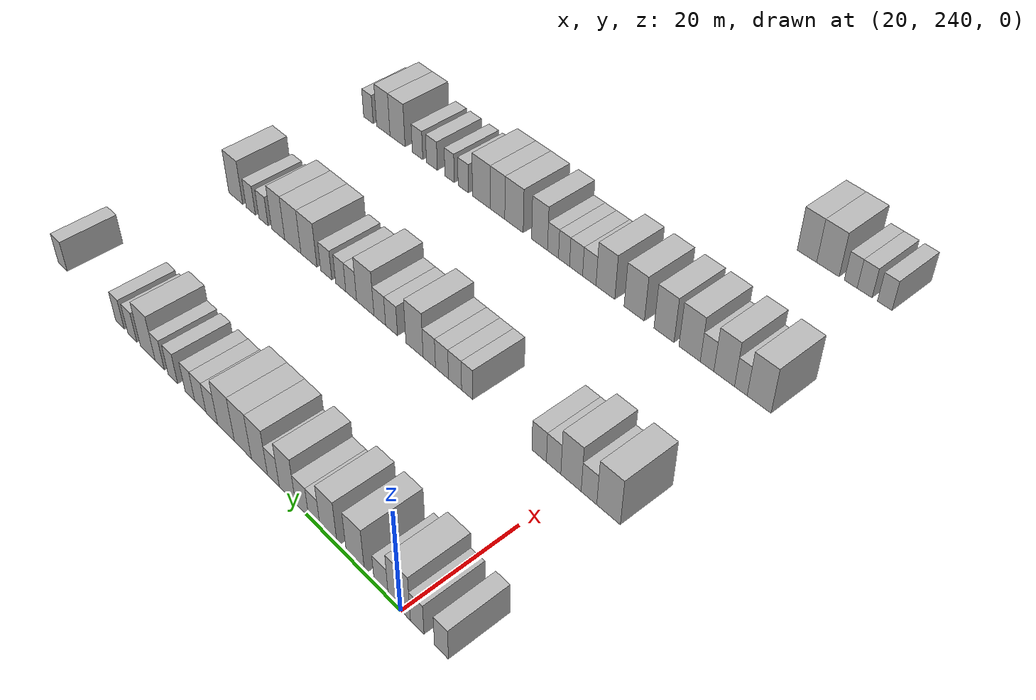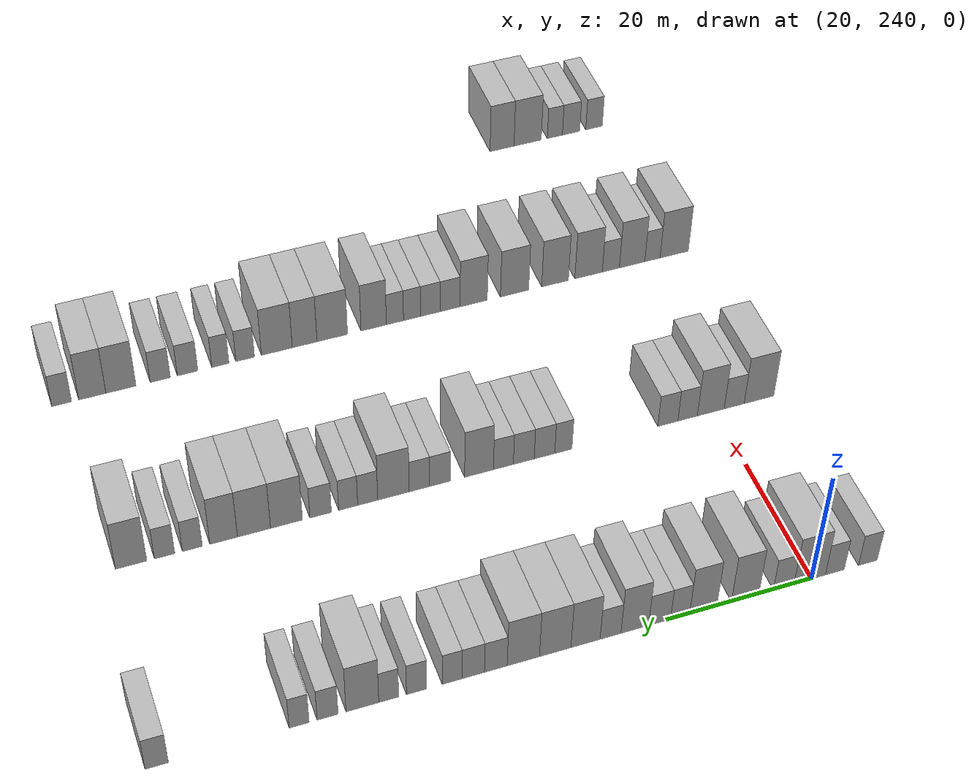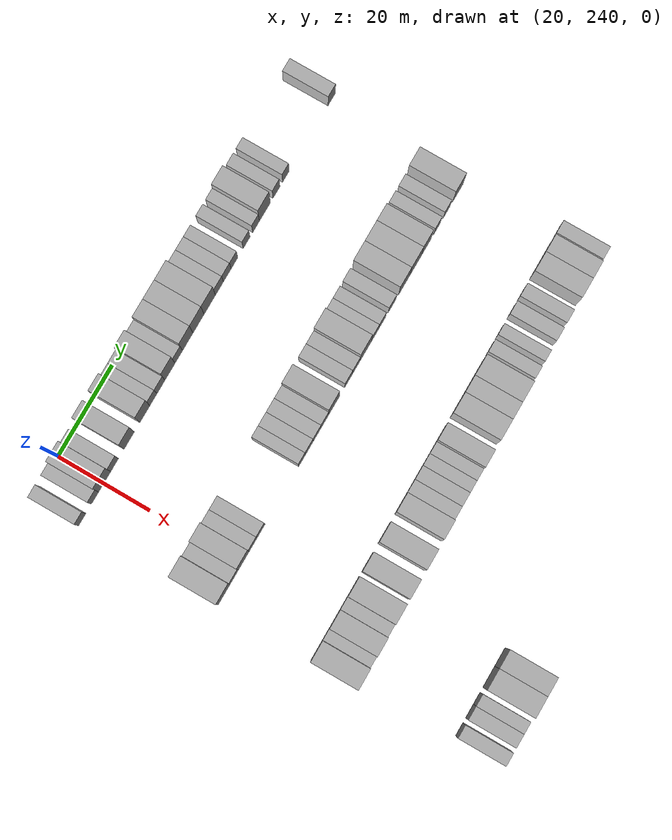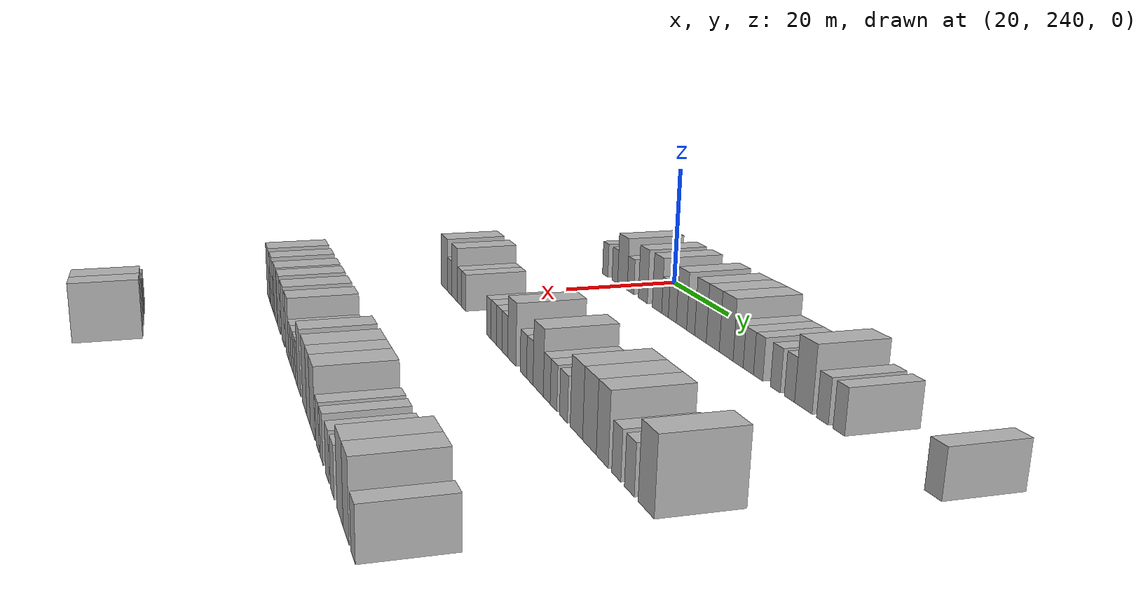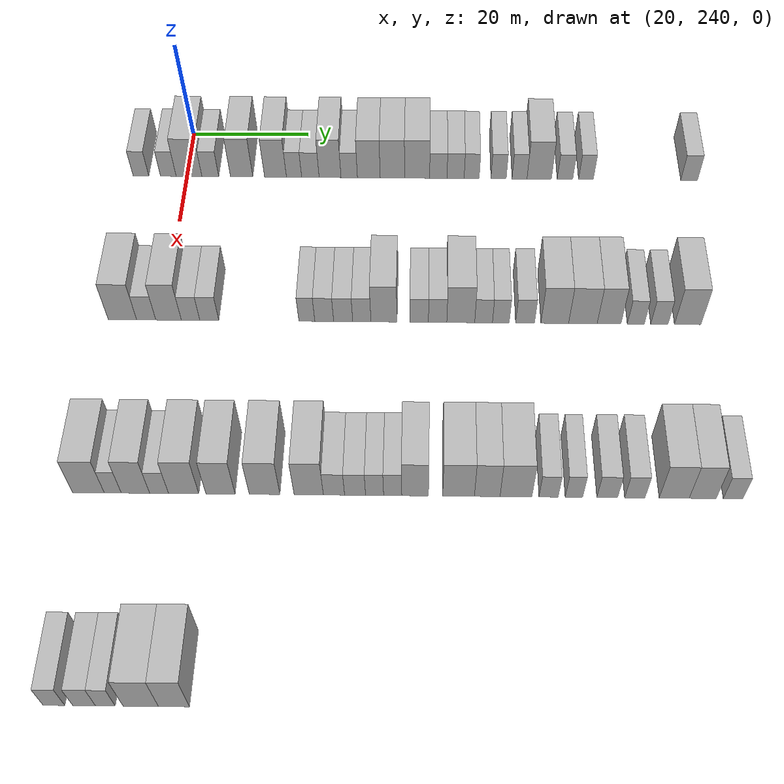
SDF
<sdf version="1.6">
 <world name="default">
  <model name="building_166">
   <static>1</static>
   <pose>25.0000 232.1615 0 0.000000 0.000000 0.000000</pose>
   <link name="link">
    <pose>0 0 3.00 0 0 0</pose>
    <collision name="collision"><geometry><box><size>10.0000 2.6607 6.0000</size></box></geometry></collision>
    <visual name="visual">
     <cast_shadows>0</cast_shadows>
     <geometry><box><size>10.0000 2.6607 6.0000</size></box></geometry>
     <material>
      <script>
       <uri>model://HANNAS_wall/materials/scripts</uri>
       <uri>model://HANNAS_wall/materials/textures</uri>
       <name>vrc/HANNAS_wall</name>
      </script>
     </material>
    </visual>
   </link>
  </model>
  <model name="building_167">
   <static>1</static>
   <pose>25.0000 236.8196 0 0.000000 0.000000 0.000000</pose>
   <link name="link">
    <pose>0 0 3.00 0 0 0</pose>
    <collision name="collision"><geometry><box><size>10.0000 2.6556 6.0000</size></box></geometry></collision>
    <visual name="visual">
     <cast_shadows>0</cast_shadows>
     <geometry><box><size>10.0000 2.6556 6.0000</size></box></geometry>
     <material>
      <script>
       <uri>model://HANNAS_wall/materials/scripts</uri>
       <uri>model://HANNAS_wall/materials/textures</uri>
       <name>vrc/HANNAS_wall</name>
      </script>
     </material>
    </visual>
   </link>
  </model>
  <model name="building_168">
   <static>1</static>
   <pose>25.0000 240.3401 0 0.000000 0.000000 0.000000</pose>
   <link name="link">
    <pose>0 0 4.50 0 0 0</pose>
    <collision name="collision"><geometry><box><size>10.0000 4.3852 9.0000</size></box></geometry></collision>
    <visual name="visual">
     <cast_shadows>0</cast_shadows>
     <geometry><box><size>10.0000 4.3852 9.0000</size></box></geometry>
     <material>
      <script>
       <uri>model://HANNAS_wall/materials/scripts</uri>
       <uri>model://HANNAS_wall/materials/textures</uri>
       <name>vrc/HANNAS_wall</name>
      </script>
     </material>
    </visual>
   </link>
  </model>
  <model name="building_169">
   <static>1</static>
   <pose>25.0000 243.9651 0 0.000000 0.000000 0.000000</pose>
   <link name="link">
    <pose>0 0 3.00 0 0 0</pose>
    <collision name="collision"><geometry><box><size>10.0000 2.8648 6.0000</size></box></geometry></collision>
    <visual name="visual">
     <cast_shadows>0</cast_shadows>
     <geometry><box><size>10.0000 2.8648 6.0000</size></box></geometry>
     <material>
      <script>
       <uri>model://HANNAS_wall/materials/scripts</uri>
       <uri>model://HANNAS_wall/materials/textures</uri>
       <name>vrc/HANNAS_wall</name>
      </script>
     </material>
    </visual>
   </link>
  </model>
  <model name="building_170">
   <static>1</static>
   <pose>25.0000 249.2929 0 0.000000 0.000000 0.000000</pose>
   <link name="link">
    <pose>0 0 4.50 0 0 0</pose>
    <collision name="collision"><geometry><box><size>10.0000 3.7908 9.0000</size></box></geometry></collision>
    <visual name="visual">
     <cast_shadows>0</cast_shadows>
     <geometry><box><size>10.0000 3.7908 9.0000</size></box></geometry>
     <material>
      <script>
       <uri>model://HANNAS_wall/materials/scripts</uri>
       <uri>model://HANNAS_wall/materials/textures</uri>
       <name>vrc/HANNAS_wall</name>
      </script>
     </material>
    </visual>
   </link>
  </model>
  <model name="building_171">
   <static>1</static>
   <pose>25.0000 255.0450 0 0.000000 0.000000 0.000000</pose>
   <link name="link">
    <pose>0 0 4.50 0 0 0</pose>
    <collision name="collision"><geometry><box><size>10.0000 3.7133 9.0000</size></box></geometry></collision>
    <visual name="visual">
     <cast_shadows>0</cast_shadows>
     <geometry><box><size>10.0000 3.7133 9.0000</size></box></geometry>
     <material>
      <script>
       <uri>model://HANNAS_wall/materials/scripts</uri>
       <uri>model://HANNAS_wall/materials/textures</uri>
       <name>vrc/HANNAS_wall</name>
      </script>
     </material>
    </visual>
   </link>
  </model>
  <model name="building_172">
   <static>1</static>
   <pose>25.0000 258.1950 0 0.000000 0.000000 0.000000</pose>
   <link name="link">
    <pose>0 0 3.00 0 0 0</pose>
    <collision name="collision"><geometry><box><size>10.0000 2.5867 6.0000</size></box></geometry></collision>
    <visual name="visual">
     <cast_shadows>0</cast_shadows>
     <geometry><box><size>10.0000 2.5867 6.0000</size></box></geometry>
     <material>
      <script>
       <uri>model://HANNAS_wall/materials/scripts</uri>
       <uri>model://HANNAS_wall/materials/textures</uri>
       <name>vrc/HANNAS_wall</name>
      </script>
     </material>
    </visual>
   </link>
  </model>
  <model name="building_173">
   <static>1</static>
   <pose>25.0000 260.9725 0 0.000000 0.000000 0.000000</pose>
   <link name="link">
    <pose>0 0 3.00 0 0 0</pose>
    <collision name="collision"><geometry><box><size>10.0000 2.9683 6.0000</size></box></geometry></collision>
    <visual name="visual">
     <cast_shadows>0</cast_shadows>
     <geometry><box><size>10.0000 2.9683 6.0000</size></box></geometry>
     <material>
      <script>
       <uri>model://HANNAS_wall/materials/scripts</uri>
       <uri>model://HANNAS_wall/materials/textures</uri>
       <name>vrc/HANNAS_wall</name>
      </script>
     </material>
    </visual>
   </link>
  </model>
  <model name="building_174">
   <static>1</static>
   <pose>25.0000 264.3155 0 0.000000 0.000000 0.000000</pose>
   <link name="link">
    <pose>0 0 4.50 0 0 0</pose>
    <collision name="collision"><geometry><box><size>10.0000 3.7177 9.0000</size></box></geometry></collision>
    <visual name="visual">
     <cast_shadows>0</cast_shadows>
     <geometry><box><size>10.0000 3.7177 9.0000</size></box></geometry>
     <material>
      <script>
       <uri>model://HANNAS_wall/materials/scripts</uri>
       <uri>model://HANNAS_wall/materials/textures</uri>
       <name>vrc/HANNAS_wall</name>
      </script>
     </material>
    </visual>
   </link>
  </model>
  <model name="building_175">
   <static>1</static>
   <pose>25.0000 267.5676 0 0.000000 0.000000 0.000000</pose>
   <link name="link">
    <pose>0 0 3.00 0 0 0</pose>
    <collision name="collision"><geometry><box><size>10.0000 2.7865 6.0000</size></box></geometry></collision>
    <visual name="visual">
     <cast_shadows>0</cast_shadows>
     <geometry><box><size>10.0000 2.7865 6.0000</size></box></geometry>
     <material>
      <script>
       <uri>model://HANNAS_wall/materials/scripts</uri>
       <uri>model://HANNAS_wall/materials/textures</uri>
       <name>vrc/HANNAS_wall</name>
      </script>
     </material>
    </visual>
   </link>
  </model>
  <model name="building_176">
   <static>1</static>
   <pose>25.0000 270.8966 0 0.000000 0.000000 0.000000</pose>
   <link name="link">
    <pose>0 0 4.50 0 0 0</pose>
    <collision name="collision"><geometry><box><size>10.0000 3.8716 9.0000</size></box></geometry></collision>
    <visual name="visual">
     <cast_shadows>0</cast_shadows>
     <geometry><box><size>10.0000 3.8716 9.0000</size></box></geometry>
     <material>
      <script>
       <uri>model://HANNAS_wall/materials/scripts</uri>
       <uri>model://HANNAS_wall/materials/textures</uri>
       <name>vrc/HANNAS_wall</name>
      </script>
     </material>
    </visual>
   </link>
  </model>
  <model name="building_177">
   <static>1</static>
   <pose>25.0000 274.9079 0 0.000000 0.000000 0.000000</pose>
   <link name="link">
    <pose>0 0 4.50 0 0 0</pose>
    <collision name="collision"><geometry><box><size>10.0000 4.1510 9.0000</size></box></geometry></collision>
    <visual name="visual">
     <cast_shadows>0</cast_shadows>
     <geometry><box><size>10.0000 4.1510 9.0000</size></box></geometry>
     <material>
      <script>
       <uri>model://HANNAS_wall/materials/scripts</uri>
       <uri>model://HANNAS_wall/materials/textures</uri>
       <name>vrc/HANNAS_wall</name>
      </script>
     </material>
    </visual>
   </link>
  </model>
  <model name="building_178">
   <static>1</static>
   <pose>25.0000 279.1012 0 0.000000 0.000000 0.000000</pose>
   <link name="link">
    <pose>0 0 4.50 0 0 0</pose>
    <collision name="collision"><geometry><box><size>10.0000 4.2356 9.0000</size></box></geometry></collision>
    <visual name="visual">
     <cast_shadows>0</cast_shadows>
     <geometry><box><size>10.0000 4.2356 9.0000</size></box></geometry>
     <material>
      <script>
       <uri>model://HANNAS_wall/materials/scripts</uri>
       <uri>model://HANNAS_wall/materials/textures</uri>
       <name>vrc/HANNAS_wall</name>
      </script>
     </material>
    </visual>
   </link>
  </model>
  <model name="building_179">
   <static>1</static>
   <pose>25.0000 282.6903 0 0.000000 0.000000 0.000000</pose>
   <link name="link">
    <pose>0 0 3.00 0 0 0</pose>
    <collision name="collision"><geometry><box><size>10.0000 2.9427 6.0000</size></box></geometry></collision>
    <visual name="visual">
     <cast_shadows>0</cast_shadows>
     <geometry><box><size>10.0000 2.9427 6.0000</size></box></geometry>
     <material>
      <script>
       <uri>model://HANNAS_wall/materials/scripts</uri>
       <uri>model://HANNAS_wall/materials/textures</uri>
       <name>vrc/HANNAS_wall</name>
      </script>
     </material>
    </visual>
   </link>
  </model>
  <model name="building_180">
   <static>1</static>
   <pose>25.0000 285.6172 0 0.000000 0.000000 0.000000</pose>
   <link name="link">
    <pose>0 0 3.00 0 0 0</pose>
    <collision name="collision"><geometry><box><size>10.0000 2.9111 6.0000</size></box></geometry></collision>
    <visual name="visual">
     <cast_shadows>0</cast_shadows>
     <geometry><box><size>10.0000 2.9111 6.0000</size></box></geometry>
     <material>
      <script>
       <uri>model://HANNAS_wall/materials/scripts</uri>
       <uri>model://HANNAS_wall/materials/textures</uri>
       <name>vrc/HANNAS_wall</name>
      </script>
     </material>
    </visual>
   </link>
  </model>
  <model name="building_181">
   <static>1</static>
   <pose>25.0000 288.3481 0 0.000000 0.000000 0.000000</pose>
   <link name="link">
    <pose>0 0 3.00 0 0 0</pose>
    <collision name="collision"><geometry><box><size>10.0000 2.5506 6.0000</size></box></geometry></collision>
    <visual name="visual">
     <cast_shadows>0</cast_shadows>
     <geometry><box><size>10.0000 2.5506 6.0000</size></box></geometry>
     <material>
      <script>
       <uri>model://HANNAS_wall/materials/scripts</uri>
       <uri>model://HANNAS_wall/materials/textures</uri>
       <name>vrc/HANNAS_wall</name>
      </script>
     </material>
    </visual>
   </link>
  </model>
  <model name="building_182">
   <static>1</static>
   <pose>25.0000 292.9137 0 0.000000 0.000000 0.000000</pose>
   <link name="link">
    <pose>0 0 3.00 0 0 0</pose>
    <collision name="collision"><geometry><box><size>10.0000 2.5805 6.0000</size></box></geometry></collision>
    <visual name="visual">
     <cast_shadows>0</cast_shadows>
     <geometry><box><size>10.0000 2.5805 6.0000</size></box></geometry>
     <material>
      <script>
       <uri>model://HANNAS_wall/materials/scripts</uri>
       <uri>model://HANNAS_wall/materials/textures</uri>
       <name>vrc/HANNAS_wall</name>
      </script>
     </material>
    </visual>
   </link>
  </model>
  <model name="building_183">
   <static>1</static>
   <pose>25.0000 296.4653 0 0.000000 0.000000 0.000000</pose>
   <link name="link">
    <pose>0 0 3.00 0 0 0</pose>
    <collision name="collision"><geometry><box><size>10.0000 2.5228 6.0000</size></box></geometry></collision>
    <visual name="visual">
     <cast_shadows>0</cast_shadows>
     <geometry><box><size>10.0000 2.5228 6.0000</size></box></geometry>
     <material>
      <script>
       <uri>model://HANNAS_wall/materials/scripts</uri>
       <uri>model://HANNAS_wall/materials/textures</uri>
       <name>vrc/HANNAS_wall</name>
      </script>
     </material>
    </visual>
   </link>
  </model>
  <model name="building_184">
   <static>1</static>
   <pose>25.0000 299.7948 0 0.000000 0.000000 0.000000</pose>
   <link name="link">
    <pose>0 0 4.50 0 0 0</pose>
    <collision name="collision"><geometry><box><size>10.0000 4.1362 9.0000</size></box></geometry></collision>
    <visual name="visual">
     <cast_shadows>0</cast_shadows>
     <geometry><box><size>10.0000 4.1362 9.0000</size></box></geometry>
     <material>
      <script>
       <uri>model://HANNAS_wall/materials/scripts</uri>
       <uri>model://HANNAS_wall/materials/textures</uri>
       <name>vrc/HANNAS_wall</name>
      </script>
     </material>
    </visual>
   </link>
  </model>
  <model name="building_185">
   <static>1</static>
   <pose>25.0000 304.1759 0 0.000000 0.000000 0.000000</pose>
   <link name="link">
    <pose>0 0 3.00 0 0 0</pose>
    <collision name="collision"><geometry><box><size>10.0000 2.6261 6.0000</size></box></geometry></collision>
    <visual name="visual">
     <cast_shadows>0</cast_shadows>
     <geometry><box><size>10.0000 2.6261 6.0000</size></box></geometry>
     <material>
      <script>
       <uri>model://HANNAS_wall/materials/scripts</uri>
       <uri>model://HANNAS_wall/materials/textures</uri>
       <name>vrc/HANNAS_wall</name>
      </script>
     </material>
    </visual>
   </link>
  </model>
  <model name="building_186">
   <static>1</static>
   <pose>25.0000 307.7310 0 0.000000 0.000000 0.000000</pose>
   <link name="link">
    <pose>0 0 3.00 0 0 0</pose>
    <collision name="collision"><geometry><box><size>10.0000 2.4841 6.0000</size></box></geometry></collision>
    <visual name="visual">
     <cast_shadows>0</cast_shadows>
     <geometry><box><size>10.0000 2.4841 6.0000</size></box></geometry>
     <material>
      <script>
       <uri>model://HANNAS_wall/materials/scripts</uri>
       <uri>model://HANNAS_wall/materials/textures</uri>
       <name>vrc/HANNAS_wall</name>
      </script>
     </material>
    </visual>
   </link>
  </model>
  <model name="building_187">
   <static>1</static>
   <pose>25.0000 325.2133 0 0.000000 0.000000 0.000000</pose>
   <link name="link">
    <pose>0 0 3.00 0 0 0</pose>
    <collision name="collision"><geometry><box><size>10.0000 2.8268 6.0000</size></box></geometry></collision>
    <visual name="visual">
     <cast_shadows>0</cast_shadows>
     <geometry><box><size>10.0000 2.8268 6.0000</size></box></geometry>
     <material>
      <script>
       <uri>model://HANNAS_wall/materials/scripts</uri>
       <uri>model://HANNAS_wall/materials/textures</uri>
       <name>vrc/HANNAS_wall</name>
      </script>
     </material>
    </visual>
   </link>
  </model>
  <model name="building_407">
   <static>1</static>
   <pose>55.0000 233.5470 0 0.000000 0.000000 0.000000</pose>
   <link name="link">
    <pose>0 0 4.50 0 0 0</pose>
    <collision name="collision"><geometry><box><size>10.0000 4.4260 9.0000</size></box></geometry></collision>
    <visual name="visual">
     <cast_shadows>0</cast_shadows>
     <geometry><box><size>10.0000 4.4260 9.0000</size></box></geometry>
     <material>
      <script>
       <uri>model://HANNAS_wall/materials/scripts</uri>
       <uri>model://HANNAS_wall/materials/textures</uri>
       <name>vrc/HANNAS_wall</name>
      </script>
     </material>
    </visual>
   </link>
  </model>
  <model name="building_408">
   <static>1</static>
   <pose>55.0000 237.2490 0 0.000000 0.000000 0.000000</pose>
   <link name="link">
    <pose>0 0 3.00 0 0 0</pose>
    <collision name="collision"><geometry><box><size>10.0000 2.9779 6.0000</size></box></geometry></collision>
    <visual name="visual">
     <cast_shadows>0</cast_shadows>
     <geometry><box><size>10.0000 2.9779 6.0000</size></box></geometry>
     <material>
      <script>
       <uri>model://HANNAS_wall/materials/scripts</uri>
       <uri>model://HANNAS_wall/materials/textures</uri>
       <name>vrc/HANNAS_wall</name>
      </script>
     </material>
    </visual>
   </link>
  </model>
  <model name="building_409">
   <static>1</static>
   <pose>55.0000 240.7280 0 0.000000 0.000000 0.000000</pose>
   <link name="link">
    <pose>0 0 4.50 0 0 0</pose>
    <collision name="collision"><geometry><box><size>10.0000 3.9801 9.0000</size></box></geometry></collision>
    <visual name="visual">
     <cast_shadows>0</cast_shadows>
     <geometry><box><size>10.0000 3.9801 9.0000</size></box></geometry>
     <material>
      <script>
       <uri>model://HANNAS_wall/materials/scripts</uri>
       <uri>model://HANNAS_wall/materials/textures</uri>
       <name>vrc/HANNAS_wall</name>
      </script>
     </material>
    </visual>
   </link>
  </model>
  <model name="building_410">
   <static>1</static>
   <pose>55.0000 244.1541 0 0.000000 0.000000 0.000000</pose>
   <link name="link">
    <pose>0 0 3.00 0 0 0</pose>
    <collision name="collision"><geometry><box><size>10.0000 2.8721 6.0000</size></box></geometry></collision>
    <visual name="visual">
     <cast_shadows>0</cast_shadows>
     <geometry><box><size>10.0000 2.8721 6.0000</size></box></geometry>
     <material>
      <script>
       <uri>model://HANNAS_wall/materials/scripts</uri>
       <uri>model://HANNAS_wall/materials/textures</uri>
       <name>vrc/HANNAS_wall</name>
      </script>
     </material>
    </visual>
   </link>
  </model>
  <model name="building_411">
   <static>1</static>
   <pose>55.0000 247.0622 0 0.000000 0.000000 0.000000</pose>
   <link name="link">
    <pose>0 0 3.00 0 0 0</pose>
    <collision name="collision"><geometry><box><size>10.0000 2.9442 6.0000</size></box></geometry></collision>
    <visual name="visual">
     <cast_shadows>0</cast_shadows>
     <geometry><box><size>10.0000 2.9442 6.0000</size></box></geometry>
     <material>
      <script>
       <uri>model://HANNAS_wall/materials/scripts</uri>
       <uri>model://HANNAS_wall/materials/textures</uri>
       <name>vrc/HANNAS_wall</name>
      </script>
     </material>
    </visual>
   </link>
  </model>
  <model name="building_412">
   <static>1</static>
   <pose>55.0000 262.2386 0 0.000000 0.000000 0.000000</pose>
   <link name="link">
    <pose>0 0 3.00 0 0 0</pose>
    <collision name="collision"><geometry><box><size>10.0000 2.4695 6.0000</size></box></geometry></collision>
    <visual name="visual">
     <cast_shadows>0</cast_shadows>
     <geometry><box><size>10.0000 2.4695 6.0000</size></box></geometry>
     <material>
      <script>
       <uri>model://HANNAS_wall/materials/scripts</uri>
       <uri>model://HANNAS_wall/materials/textures</uri>
       <name>vrc/HANNAS_wall</name>
      </script>
     </material>
    </visual>
   </link>
  </model>
  <model name="building_413">
   <static>1</static>
   <pose>55.0000 264.9357 0 0.000000 0.000000 0.000000</pose>
   <link name="link">
    <pose>0 0 3.00 0 0 0</pose>
    <collision name="collision"><geometry><box><size>10.0000 2.9248 6.0000</size></box></geometry></collision>
    <visual name="visual">
     <cast_shadows>0</cast_shadows>
     <geometry><box><size>10.0000 2.9248 6.0000</size></box></geometry>
     <material>
      <script>
       <uri>model://HANNAS_wall/materials/scripts</uri>
       <uri>model://HANNAS_wall/materials/textures</uri>
       <name>vrc/HANNAS_wall</name>
      </script>
     </material>
    </visual>
   </link>
  </model>
  <model name="building_414">
   <static>1</static>
   <pose>55.0000 267.8800 0 0.000000 0.000000 0.000000</pose>
   <link name="link">
    <pose>0 0 3.00 0 0 0</pose>
    <collision name="collision"><geometry><box><size>10.0000 2.9638 6.0000</size></box></geometry></collision>
    <visual name="visual">
     <cast_shadows>0</cast_shadows>
     <geometry><box><size>10.0000 2.9638 6.0000</size></box></geometry>
     <material>
      <script>
       <uri>model://HANNAS_wall/materials/scripts</uri>
       <uri>model://HANNAS_wall/materials/textures</uri>
       <name>vrc/HANNAS_wall</name>
      </script>
     </material>
    </visual>
   </link>
  </model>
  <model name="building_415">
   <static>1</static>
   <pose>55.0000 270.7772 0 0.000000 0.000000 0.000000</pose>
   <link name="link">
    <pose>0 0 3.00 0 0 0</pose>
    <collision name="collision"><geometry><box><size>10.0000 2.8307 6.0000</size></box></geometry></collision>
    <visual name="visual">
     <cast_shadows>0</cast_shadows>
     <geometry><box><size>10.0000 2.8307 6.0000</size></box></geometry>
     <material>
      <script>
       <uri>model://HANNAS_wall/materials/scripts</uri>
       <uri>model://HANNAS_wall/materials/textures</uri>
       <name>vrc/HANNAS_wall</name>
      </script>
     </material>
    </visual>
   </link>
  </model>
  <model name="building_416">
   <static>1</static>
   <pose>55.0000 274.2167 0 0.000000 0.000000 0.000000</pose>
   <link name="link">
    <pose>0 0 4.50 0 0 0</pose>
    <collision name="collision"><geometry><box><size>10.0000 4.0482 9.0000</size></box></geometry></collision>
    <visual name="visual">
     <cast_shadows>0</cast_shadows>
     <geometry><box><size>10.0000 4.0482 9.0000</size></box></geometry>
     <material>
      <script>
       <uri>model://HANNAS_wall/materials/scripts</uri>
       <uri>model://HANNAS_wall/materials/textures</uri>
       <name>vrc/HANNAS_wall</name>
      </script>
     </material>
    </visual>
   </link>
  </model>
  <model name="building_417">
   <static>1</static>
   <pose>55.0000 279.6783 0 0.000000 0.000000 0.000000</pose>
   <link name="link">
    <pose>0 0 3.00 0 0 0</pose>
    <collision name="collision"><geometry><box><size>10.0000 2.8750 6.0000</size></box></geometry></collision>
    <visual name="visual">
     <cast_shadows>0</cast_shadows>
     <geometry><box><size>10.0000 2.8750 6.0000</size></box></geometry>
     <material>
      <script>
       <uri>model://HANNAS_wall/materials/scripts</uri>
       <uri>model://HANNAS_wall/materials/textures</uri>
       <name>vrc/HANNAS_wall</name>
      </script>
     </material>
    </visual>
   </link>
  </model>
  <model name="building_418">
   <static>1</static>
   <pose>55.0000 282.5422 0 0.000000 0.000000 0.000000</pose>
   <link name="link">
    <pose>0 0 3.00 0 0 0</pose>
    <collision name="collision"><geometry><box><size>10.0000 2.8529 6.0000</size></box></geometry></collision>
    <visual name="visual">
     <cast_shadows>0</cast_shadows>
     <geometry><box><size>10.0000 2.8529 6.0000</size></box></geometry>
     <material>
      <script>
       <uri>model://HANNAS_wall/materials/scripts</uri>
       <uri>model://HANNAS_wall/materials/textures</uri>
       <name>vrc/HANNAS_wall</name>
      </script>
     </material>
    </visual>
   </link>
  </model>
  <model name="building_419">
   <static>1</static>
   <pose>55.0000 286.1359 0 0.000000 0.000000 0.000000</pose>
   <link name="link">
    <pose>0 0 4.50 0 0 0</pose>
    <collision name="collision"><geometry><box><size>10.0000 4.3344 9.0000</size></box></geometry></collision>
    <visual name="visual">
     <cast_shadows>0</cast_shadows>
     <geometry><box><size>10.0000 4.3344 9.0000</size></box></geometry>
     <material>
      <script>
       <uri>model://HANNAS_wall/materials/scripts</uri>
       <uri>model://HANNAS_wall/materials/textures</uri>
       <name>vrc/HANNAS_wall</name>
      </script>
     </material>
    </visual>
   </link>
  </model>
  <model name="building_420">
   <static>1</static>
   <pose>55.0000 289.6783 0 0.000000 0.000000 0.000000</pose>
   <link name="link">
    <pose>0 0 3.00 0 0 0</pose>
    <collision name="collision"><geometry><box><size>10.0000 2.7504 6.0000</size></box></geometry></collision>
    <visual name="visual">
     <cast_shadows>0</cast_shadows>
     <geometry><box><size>10.0000 2.7504 6.0000</size></box></geometry>
     <material>
      <script>
       <uri>model://HANNAS_wall/materials/scripts</uri>
       <uri>model://HANNAS_wall/materials/textures</uri>
       <name>vrc/HANNAS_wall</name>
      </script>
     </material>
    </visual>
   </link>
  </model>
  <model name="building_421">
   <static>1</static>
   <pose>55.0000 292.3525 0 0.000000 0.000000 0.000000</pose>
   <link name="link">
    <pose>0 0 3.00 0 0 0</pose>
    <collision name="collision"><geometry><box><size>10.0000 2.5979 6.0000</size></box></geometry></collision>
    <visual name="visual">
     <cast_shadows>0</cast_shadows>
     <geometry><box><size>10.0000 2.5979 6.0000</size></box></geometry>
     <material>
      <script>
       <uri>model://HANNAS_wall/materials/scripts</uri>
       <uri>model://HANNAS_wall/materials/textures</uri>
       <name>vrc/HANNAS_wall</name>
      </script>
     </material>
    </visual>
   </link>
  </model>
  <model name="building_422">
   <static>1</static>
   <pose>55.0000 296.1115 0 0.000000 0.000000 0.000000</pose>
   <link name="link">
    <pose>0 0 3.00 0 0 0</pose>
    <collision name="collision"><geometry><box><size>10.0000 2.9203 6.0000</size></box></geometry></collision>
    <visual name="visual">
     <cast_shadows>0</cast_shadows>
     <geometry><box><size>10.0000 2.9203 6.0000</size></box></geometry>
     <material>
      <script>
       <uri>model://HANNAS_wall/materials/scripts</uri>
       <uri>model://HANNAS_wall/materials/textures</uri>
       <name>vrc/HANNAS_wall</name>
      </script>
     </material>
    </visual>
   </link>
  </model>
  <model name="building_423">
   <static>1</static>
   <pose>55.0000 300.7183 0 0.000000 0.000000 0.000000</pose>
   <link name="link">
    <pose>0 0 4.50 0 0 0</pose>
    <collision name="collision"><geometry><box><size>10.0000 4.2932 9.0000</size></box></geometry></collision>
    <visual name="visual">
     <cast_shadows>0</cast_shadows>
     <geometry><box><size>10.0000 4.2932 9.0000</size></box></geometry>
     <material>
      <script>
       <uri>model://HANNAS_wall/materials/scripts</uri>
       <uri>model://HANNAS_wall/materials/textures</uri>
       <name>vrc/HANNAS_wall</name>
      </script>
     </material>
    </visual>
   </link>
  </model>
  <model name="building_424">
   <static>1</static>
   <pose>55.0000 305.0798 0 0.000000 0.000000 0.000000</pose>
   <link name="link">
    <pose>0 0 4.50 0 0 0</pose>
    <collision name="collision"><geometry><box><size>10.0000 4.4299 9.0000</size></box></geometry></collision>
    <visual name="visual">
     <cast_shadows>0</cast_shadows>
     <geometry><box><size>10.0000 4.4299 9.0000</size></box></geometry>
     <material>
      <script>
       <uri>model://HANNAS_wall/materials/scripts</uri>
       <uri>model://HANNAS_wall/materials/textures</uri>
       <name>vrc/HANNAS_wall</name>
      </script>
     </material>
    </visual>
   </link>
  </model>
  <model name="building_425">
   <static>1</static>
   <pose>55.0000 309.1349 0 0.000000 0.000000 0.000000</pose>
   <link name="link">
    <pose>0 0 4.50 0 0 0</pose>
    <collision name="collision"><geometry><box><size>10.0000 3.6804 9.0000</size></box></geometry></collision>
    <visual name="visual">
     <cast_shadows>0</cast_shadows>
     <geometry><box><size>10.0000 3.6804 9.0000</size></box></geometry>
     <material>
      <script>
       <uri>model://HANNAS_wall/materials/scripts</uri>
       <uri>model://HANNAS_wall/materials/textures</uri>
       <name>vrc/HANNAS_wall</name>
      </script>
     </material>
    </visual>
   </link>
  </model>
  <model name="building_426">
   <static>1</static>
   <pose>55.0000 313.2906 0 0.000000 0.000000 0.000000</pose>
   <link name="link">
    <pose>0 0 3.00 0 0 0</pose>
    <collision name="collision"><geometry><box><size>10.0000 2.6310 6.0000</size></box></geometry></collision>
    <visual name="visual">
     <cast_shadows>0</cast_shadows>
     <geometry><box><size>10.0000 2.6310 6.0000</size></box></geometry>
     <material>
      <script>
       <uri>model://HANNAS_wall/materials/scripts</uri>
       <uri>model://HANNAS_wall/materials/textures</uri>
       <name>vrc/HANNAS_wall</name>
      </script>
     </material>
    </visual>
   </link>
  </model>
  <model name="building_427">
   <static>1</static>
   <pose>55.0000 316.9447 0 0.000000 0.000000 0.000000</pose>
   <link name="link">
    <pose>0 0 3.00 0 0 0</pose>
    <collision name="collision"><geometry><box><size>10.0000 2.6771 6.0000</size></box></geometry></collision>
    <visual name="visual">
     <cast_shadows>0</cast_shadows>
     <geometry><box><size>10.0000 2.6771 6.0000</size></box></geometry>
     <material>
      <script>
       <uri>model://HANNAS_wall/materials/scripts</uri>
       <uri>model://HANNAS_wall/materials/textures</uri>
       <name>vrc/HANNAS_wall</name>
      </script>
     </material>
    </visual>
   </link>
  </model>
  <model name="building_428">
   <static>1</static>
   <pose>55.0000 321.3314 0 0.000000 0.000000 0.000000</pose>
   <link name="link">
    <pose>0 0 4.50 0 0 0</pose>
    <collision name="collision"><geometry><box><size>10.0000 4.0963 9.0000</size></box></geometry></collision>
    <visual name="visual">
     <cast_shadows>0</cast_shadows>
     <geometry><box><size>10.0000 4.0963 9.0000</size></box></geometry>
     <material>
      <script>
       <uri>model://HANNAS_wall/materials/scripts</uri>
       <uri>model://HANNAS_wall/materials/textures</uri>
       <name>vrc/HANNAS_wall</name>
      </script>
     </material>
    </visual>
   </link>
  </model>
  <model name="building_621">
   <static>1</static>
   <pose>85.0000 233.2776 0 0.000000 0.000000 0.000000</pose>
   <link name="link">
    <pose>0 0 4.50 0 0 0</pose>
    <collision name="collision"><geometry><box><size>10.0000 4.4742 9.0000</size></box></geometry></collision>
    <visual name="visual">
     <cast_shadows>0</cast_shadows>
     <geometry><box><size>10.0000 4.4742 9.0000</size></box></geometry>
     <material>
      <script>
       <uri>model://HANNAS_wall/materials/scripts</uri>
       <uri>model://HANNAS_wall/materials/textures</uri>
       <name>vrc/HANNAS_wall</name>
      </script>
     </material>
    </visual>
   </link>
  </model>
  <model name="building_622">
   <static>1</static>
   <pose>85.0000 236.7168 0 0.000000 0.000000 0.000000</pose>
   <link name="link">
    <pose>0 0 3.00 0 0 0</pose>
    <collision name="collision"><geometry><box><size>10.0000 2.4041 6.0000</size></box></geometry></collision>
    <visual name="visual">
     <cast_shadows>0</cast_shadows>
     <geometry><box><size>10.0000 2.4041 6.0000</size></box></geometry>
     <material>
      <script>
       <uri>model://HANNAS_wall/materials/scripts</uri>
       <uri>model://HANNAS_wall/materials/textures</uri>
       <name>vrc/HANNAS_wall</name>
      </script>
     </material>
    </visual>
   </link>
  </model>
  <model name="building_623">
   <static>1</static>
   <pose>85.0000 239.9204 0 0.000000 0.000000 0.000000</pose>
   <link name="link">
    <pose>0 0 4.50 0 0 0</pose>
    <collision name="collision"><geometry><box><size>10.0000 4.0032 9.0000</size></box></geometry></collision>
    <visual name="visual">
     <cast_shadows>0</cast_shadows>
     <geometry><box><size>10.0000 4.0032 9.0000</size></box></geometry>
     <material>
      <script>
       <uri>model://HANNAS_wall/materials/scripts</uri>
       <uri>model://HANNAS_wall/materials/textures</uri>
       <name>vrc/HANNAS_wall</name>
      </script>
     </material>
    </visual>
   </link>
  </model>
  <model name="building_624">
   <static>1</static>
   <pose>85.0000 243.2545 0 0.000000 0.000000 0.000000</pose>
   <link name="link">
    <pose>0 0 3.00 0 0 0</pose>
    <collision name="collision"><geometry><box><size>10.0000 2.6650 6.0000</size></box></geometry></collision>
    <visual name="visual">
     <cast_shadows>0</cast_shadows>
     <geometry><box><size>10.0000 2.6650 6.0000</size></box></geometry>
     <material>
      <script>
       <uri>model://HANNAS_wall/materials/scripts</uri>
       <uri>model://HANNAS_wall/materials/textures</uri>
       <name>vrc/HANNAS_wall</name>
      </script>
     </material>
    </visual>
   </link>
  </model>
  <model name="building_625">
   <static>1</static>
   <pose>85.0000 246.7229 0 0.000000 0.000000 0.000000</pose>
   <link name="link">
    <pose>0 0 4.50 0 0 0</pose>
    <collision name="collision"><geometry><box><size>10.0000 4.2717 9.0000</size></box></geometry></collision>
    <visual name="visual">
     <cast_shadows>0</cast_shadows>
     <geometry><box><size>10.0000 4.2717 9.0000</size></box></geometry>
     <material>
      <script>
       <uri>model://HANNAS_wall/materials/scripts</uri>
       <uri>model://HANNAS_wall/materials/textures</uri>
       <name>vrc/HANNAS_wall</name>
      </script>
     </material>
    </visual>
   </link>
  </model>
  <model name="building_626">
   <static>1</static>
   <pose>85.0000 251.9174 0 0.000000 0.000000 0.000000</pose>
   <link name="link">
    <pose>0 0 4.50 0 0 0</pose>
    <collision name="collision"><geometry><box><size>10.0000 4.1174 9.0000</size></box></geometry></collision>
    <visual name="visual">
     <cast_shadows>0</cast_shadows>
     <geometry><box><size>10.0000 4.1174 9.0000</size></box></geometry>
     <material>
      <script>
       <uri>model://HANNAS_wall/materials/scripts</uri>
       <uri>model://HANNAS_wall/materials/textures</uri>
       <name>vrc/HANNAS_wall</name>
      </script>
     </material>
    </visual>
   </link>
  </model>
  <model name="building_627">
   <static>1</static>
   <pose>85.0000 258.1390 0 0.000000 0.000000 0.000000</pose>
   <link name="link">
    <pose>0 0 4.50 0 0 0</pose>
    <collision name="collision"><geometry><box><size>10.0000 4.3257 9.0000</size></box></geometry></collision>
    <visual name="visual">
     <cast_shadows>0</cast_shadows>
     <geometry><box><size>10.0000 4.3257 9.0000</size></box></geometry>
     <material>
      <script>
       <uri>model://HANNAS_wall/materials/scripts</uri>
       <uri>model://HANNAS_wall/materials/textures</uri>
       <name>vrc/HANNAS_wall</name>
      </script>
     </material>
    </visual>
   </link>
  </model>
  <model name="building_628">
   <static>1</static>
   <pose>85.0000 264.3638 0 0.000000 0.000000 0.000000</pose>
   <link name="link">
    <pose>0 0 4.50 0 0 0</pose>
    <collision name="collision"><geometry><box><size>10.0000 4.1239 9.0000</size></box></geometry></collision>
    <visual name="visual">
     <cast_shadows>0</cast_shadows>
     <geometry><box><size>10.0000 4.1239 9.0000</size></box></geometry>
     <material>
      <script>
       <uri>model://HANNAS_wall/materials/scripts</uri>
       <uri>model://HANNAS_wall/materials/textures</uri>
       <name>vrc/HANNAS_wall</name>
      </script>
     </material>
    </visual>
   </link>
  </model>
  <model name="building_629">
   <static>1</static>
   <pose>85.0000 267.9201 0 0.000000 0.000000 0.000000</pose>
   <link name="link">
    <pose>0 0 3.00 0 0 0</pose>
    <collision name="collision"><geometry><box><size>10.0000 2.9888 6.0000</size></box></geometry></collision>
    <visual name="visual">
     <cast_shadows>0</cast_shadows>
     <geometry><box><size>10.0000 2.9888 6.0000</size></box></geometry>
     <material>
      <script>
       <uri>model://HANNAS_wall/materials/scripts</uri>
       <uri>model://HANNAS_wall/materials/textures</uri>
       <name>vrc/HANNAS_wall</name>
      </script>
     </material>
    </visual>
   </link>
  </model>
  <model name="building_630">
   <static>1</static>
   <pose>85.0000 270.8931 0 0.000000 0.000000 0.000000</pose>
   <link name="link">
    <pose>0 0 3.00 0 0 0</pose>
    <collision name="collision"><geometry><box><size>10.0000 2.9570 6.0000</size></box></geometry></collision>
    <visual name="visual">
     <cast_shadows>0</cast_shadows>
     <geometry><box><size>10.0000 2.9570 6.0000</size></box></geometry>
     <material>
      <script>
       <uri>model://HANNAS_wall/materials/scripts</uri>
       <uri>model://HANNAS_wall/materials/textures</uri>
       <name>vrc/HANNAS_wall</name>
      </script>
     </material>
    </visual>
   </link>
  </model>
  <model name="building_631">
   <static>1</static>
   <pose>85.0000 273.6431 0 0.000000 0.000000 0.000000</pose>
   <link name="link">
    <pose>0 0 3.00 0 0 0</pose>
    <collision name="collision"><geometry><box><size>10.0000 2.5432 6.0000</size></box></geometry></collision>
    <visual name="visual">
     <cast_shadows>0</cast_shadows>
     <geometry><box><size>10.0000 2.5432 6.0000</size></box></geometry>
     <material>
      <script>
       <uri>model://HANNAS_wall/materials/scripts</uri>
       <uri>model://HANNAS_wall/materials/textures</uri>
       <name>vrc/HANNAS_wall</name>
      </script>
     </material>
    </visual>
   </link>
  </model>
  <model name="building_632">
   <static>1</static>
   <pose>85.0000 276.1923 0 0.000000 0.000000 0.000000</pose>
   <link name="link">
    <pose>0 0 3.00 0 0 0</pose>
    <collision name="collision"><geometry><box><size>10.0000 2.5551 6.0000</size></box></geometry></collision>
    <visual name="visual">
     <cast_shadows>0</cast_shadows>
     <geometry><box><size>10.0000 2.5551 6.0000</size></box></geometry>
     <material>
      <script>
       <uri>model://HANNAS_wall/materials/scripts</uri>
       <uri>model://HANNAS_wall/materials/textures</uri>
       <name>vrc/HANNAS_wall</name>
      </script>
     </material>
    </visual>
   </link>
  </model>
  <model name="building_633">
   <static>1</static>
   <pose>85.0000 279.3448 0 0.000000 0.000000 0.000000</pose>
   <link name="link">
    <pose>0 0 4.50 0 0 0</pose>
    <collision name="collision"><geometry><box><size>10.0000 3.7500 9.0000</size></box></geometry></collision>
    <visual name="visual">
     <cast_shadows>0</cast_shadows>
     <geometry><box><size>10.0000 3.7500 9.0000</size></box></geometry>
     <material>
      <script>
       <uri>model://HANNAS_wall/materials/scripts</uri>
       <uri>model://HANNAS_wall/materials/textures</uri>
       <name>vrc/HANNAS_wall</name>
      </script>
     </material>
    </visual>
   </link>
  </model>
  <model name="building_634">
   <static>1</static>
   <pose>85.0000 285.4569 0 0.000000 0.000000 0.000000</pose>
   <link name="link">
    <pose>0 0 4.50 0 0 0</pose>
    <collision name="collision"><geometry><box><size>10.0000 4.4743 9.0000</size></box></geometry></collision>
    <visual name="visual">
     <cast_shadows>0</cast_shadows>
     <geometry><box><size>10.0000 4.4743 9.0000</size></box></geometry>
     <material>
      <script>
       <uri>model://HANNAS_wall/materials/scripts</uri>
       <uri>model://HANNAS_wall/materials/textures</uri>
       <name>vrc/HANNAS_wall</name>
      </script>
     </material>
    </visual>
   </link>
  </model>
  <model name="building_635">
   <static>1</static>
   <pose>85.0000 289.4956 0 0.000000 0.000000 0.000000</pose>
   <link name="link">
    <pose>0 0 4.50 0 0 0</pose>
    <collision name="collision"><geometry><box><size>10.0000 3.6030 9.0000</size></box></geometry></collision>
    <visual name="visual">
     <cast_shadows>0</cast_shadows>
     <geometry><box><size>10.0000 3.6030 9.0000</size></box></geometry>
     <material>
      <script>
       <uri>model://HANNAS_wall/materials/scripts</uri>
       <uri>model://HANNAS_wall/materials/textures</uri>
       <name>vrc/HANNAS_wall</name>
      </script>
     </material>
    </visual>
   </link>
  </model>
  <model name="building_636">
   <static>1</static>
   <pose>85.0000 293.5411 0 0.000000 0.000000 0.000000</pose>
   <link name="link">
    <pose>0 0 4.50 0 0 0</pose>
    <collision name="collision"><geometry><box><size>10.0000 4.4879 9.0000</size></box></geometry></collision>
    <visual name="visual">
     <cast_shadows>0</cast_shadows>
     <geometry><box><size>10.0000 4.4879 9.0000</size></box></geometry>
     <material>
      <script>
       <uri>model://HANNAS_wall/materials/scripts</uri>
       <uri>model://HANNAS_wall/materials/textures</uri>
       <name>vrc/HANNAS_wall</name>
      </script>
     </material>
    </visual>
   </link>
  </model>
  <model name="building_637">
   <static>1</static>
   <pose>85.0000 298.1264 0 0.000000 0.000000 0.000000</pose>
   <link name="link">
    <pose>0 0 3.00 0 0 0</pose>
    <collision name="collision"><geometry><box><size>10.0000 2.6829 6.0000</size></box></geometry></collision>
    <visual name="visual">
     <cast_shadows>0</cast_shadows>
     <geometry><box><size>10.0000 2.6829 6.0000</size></box></geometry>
     <material>
      <script>
       <uri>model://HANNAS_wall/materials/scripts</uri>
       <uri>model://HANNAS_wall/materials/textures</uri>
       <name>vrc/HANNAS_wall</name>
      </script>
     </material>
    </visual>
   </link>
  </model>
  <model name="building_638">
   <static>1</static>
   <pose>85.0000 301.6927 0 0.000000 0.000000 0.000000</pose>
   <link name="link">
    <pose>0 0 3.00 0 0 0</pose>
    <collision name="collision"><geometry><box><size>10.0000 2.4495 6.0000</size></box></geometry></collision>
    <visual name="visual">
     <cast_shadows>0</cast_shadows>
     <geometry><box><size>10.0000 2.4495 6.0000</size></box></geometry>
     <material>
      <script>
       <uri>model://HANNAS_wall/materials/scripts</uri>
       <uri>model://HANNAS_wall/materials/textures</uri>
       <name>vrc/HANNAS_wall</name>
      </script>
     </material>
    </visual>
   </link>
  </model>
  <model name="building_639">
   <static>1</static>
   <pose>85.0000 306.3743 0 0.000000 0.000000 0.000000</pose>
   <link name="link">
    <pose>0 0 3.00 0 0 0</pose>
    <collision name="collision"><geometry><box><size>10.0000 2.9137 6.0000</size></box></geometry></collision>
    <visual name="visual">
     <cast_shadows>0</cast_shadows>
     <geometry><box><size>10.0000 2.9137 6.0000</size></box></geometry>
     <material>
      <script>
       <uri>model://HANNAS_wall/materials/scripts</uri>
       <uri>model://HANNAS_wall/materials/textures</uri>
       <name>vrc/HANNAS_wall</name>
      </script>
     </material>
    </visual>
   </link>
  </model>
  <model name="building_640">
   <static>1</static>
   <pose>85.0000 310.2550 0 0.000000 0.000000 0.000000</pose>
   <link name="link">
    <pose>0 0 3.00 0 0 0</pose>
    <collision name="collision"><geometry><box><size>10.0000 2.8477 6.0000</size></box></geometry></collision>
    <visual name="visual">
     <cast_shadows>0</cast_shadows>
     <geometry><box><size>10.0000 2.8477 6.0000</size></box></geometry>
     <material>
      <script>
       <uri>model://HANNAS_wall/materials/scripts</uri>
       <uri>model://HANNAS_wall/materials/textures</uri>
       <name>vrc/HANNAS_wall</name>
      </script>
     </material>
    </visual>
   </link>
  </model>
  <model name="building_641">
   <static>1</static>
   <pose>85.0000 315.7856 0 0.000000 0.000000 0.000000</pose>
   <link name="link">
    <pose>0 0 4.50 0 0 0</pose>
    <collision name="collision"><geometry><box><size>10.0000 4.2134 9.0000</size></box></geometry></collision>
    <visual name="visual">
     <cast_shadows>0</cast_shadows>
     <geometry><box><size>10.0000 4.2134 9.0000</size></box></geometry>
     <material>
      <script>
       <uri>model://HANNAS_wall/materials/scripts</uri>
       <uri>model://HANNAS_wall/materials/textures</uri>
       <name>vrc/HANNAS_wall</name>
      </script>
     </material>
    </visual>
   </link>
  </model>
  <model name="building_642">
   <static>1</static>
   <pose>85.0000 319.7877 0 0.000000 0.000000 0.000000</pose>
   <link name="link">
    <pose>0 0 4.50 0 0 0</pose>
    <collision name="collision"><geometry><box><size>10.0000 3.7909 9.0000</size></box></geometry></collision>
    <visual name="visual">
     <cast_shadows>0</cast_shadows>
     <geometry><box><size>10.0000 3.7909 9.0000</size></box></geometry>
     <material>
      <script>
       <uri>model://HANNAS_wall/materials/scripts</uri>
       <uri>model://HANNAS_wall/materials/textures</uri>
       <name>vrc/HANNAS_wall</name>
      </script>
     </material>
    </visual>
   </link>
  </model>
  <model name="building_643">
   <static>1</static>
   <pose>85.0000 324.0557 0 0.000000 0.000000 0.000000</pose>
   <link name="link">
    <pose>0 0 3.00 0 0 0</pose>
    <collision name="collision"><geometry><box><size>10.0000 2.7451 6.0000</size></box></geometry></collision>
    <visual name="visual">
     <cast_shadows>0</cast_shadows>
     <geometry><box><size>10.0000 2.7451 6.0000</size></box></geometry>
     <material>
      <script>
       <uri>model://HANNAS_wall/materials/scripts</uri>
       <uri>model://HANNAS_wall/materials/textures</uri>
       <name>vrc/HANNAS_wall</name>
      </script>
     </material>
    </visual>
   </link>
  </model>
  <model name="building_849">
   <static>1</static>
   <pose>115.0000 233.9365 0 0.000000 0.000000 0.000000</pose>
   <link name="link">
    <pose>0 0 3.00 0 0 0</pose>
    <collision name="collision"><geometry><box><size>10.0000 2.7586 6.0000</size></box></geometry></collision>
    <visual name="visual">
     <cast_shadows>0</cast_shadows>
     <geometry><box><size>10.0000 2.7586 6.0000</size></box></geometry>
     <material>
      <script>
       <uri>model://HANNAS_wall/materials/scripts</uri>
       <uri>model://HANNAS_wall/materials/textures</uri>
       <name>vrc/HANNAS_wall</name>
      </script>
     </material>
    </visual>
   </link>
  </model>
  <model name="building_850">
   <static>1</static>
   <pose>115.0000 237.7541 0 0.000000 0.000000 0.000000</pose>
   <link name="link">
    <pose>0 0 3.00 0 0 0</pose>
    <collision name="collision"><geometry><box><size>10.0000 2.8765 6.0000</size></box></geometry></collision>
    <visual name="visual">
     <cast_shadows>0</cast_shadows>
     <geometry><box><size>10.0000 2.8765 6.0000</size></box></geometry>
     <material>
      <script>
       <uri>model://HANNAS_wall/materials/scripts</uri>
       <uri>model://HANNAS_wall/materials/textures</uri>
       <name>vrc/HANNAS_wall</name>
      </script>
     </material>
    </visual>
   </link>
  </model>
  <model name="building_851">
   <static>1</static>
   <pose>115.0000 240.4439 0 0.000000 0.000000 0.000000</pose>
   <link name="link">
    <pose>0 0 3.00 0 0 0</pose>
    <collision name="collision"><geometry><box><size>10.0000 2.5032 6.0000</size></box></geometry></collision>
    <visual name="visual">
     <cast_shadows>0</cast_shadows>
     <geometry><box><size>10.0000 2.5032 6.0000</size></box></geometry>
     <material>
      <script>
       <uri>model://HANNAS_wall/materials/scripts</uri>
       <uri>model://HANNAS_wall/materials/textures</uri>
       <name>vrc/HANNAS_wall</name>
      </script>
     </material>
    </visual>
   </link>
  </model>
  <model name="building_852">
   <static>1</static>
   <pose>115.0000 244.9336 0 0.000000 0.000000 0.000000</pose>
   <link name="link">
    <pose>0 0 4.50 0 0 0</pose>
    <collision name="collision"><geometry><box><size>10.0000 4.4761 9.0000</size></box></geometry></collision>
    <visual name="visual">
     <cast_shadows>0</cast_shadows>
     <geometry><box><size>10.0000 4.4761 9.0000</size></box></geometry>
     <material>
      <script>
       <uri>model://HANNAS_wall/materials/scripts</uri>
       <uri>model://HANNAS_wall/materials/textures</uri>
       <name>vrc/HANNAS_wall</name>
      </script>
     </material>
    </visual>
   </link>
  </model>
  <model name="building_853">
   <static>1</static>
   <pose>115.0000 249.1337 0 0.000000 0.000000 0.000000</pose>
   <link name="link">
    <pose>0 0 4.50 0 0 0</pose>
    <collision name="collision"><geometry><box><size>10.0000 3.9242 9.0000</size></box></geometry></collision>
    <visual name="visual">
     <cast_shadows>0</cast_shadows>
     <geometry><box><size>10.0000 3.9242 9.0000</size></box></geometry>
     <material>
      <script>
       <uri>model://HANNAS_wall/materials/scripts</uri>
       <uri>model://HANNAS_wall/materials/textures</uri>
       <name>vrc/HANNAS_wall</name>
      </script>
     </material>
    </visual>
   </link>
  </model>
 </world>
</sdf>
